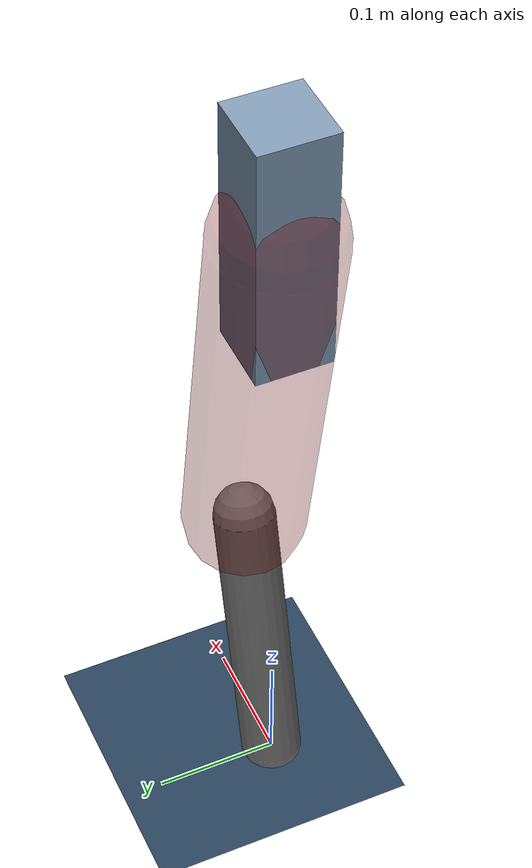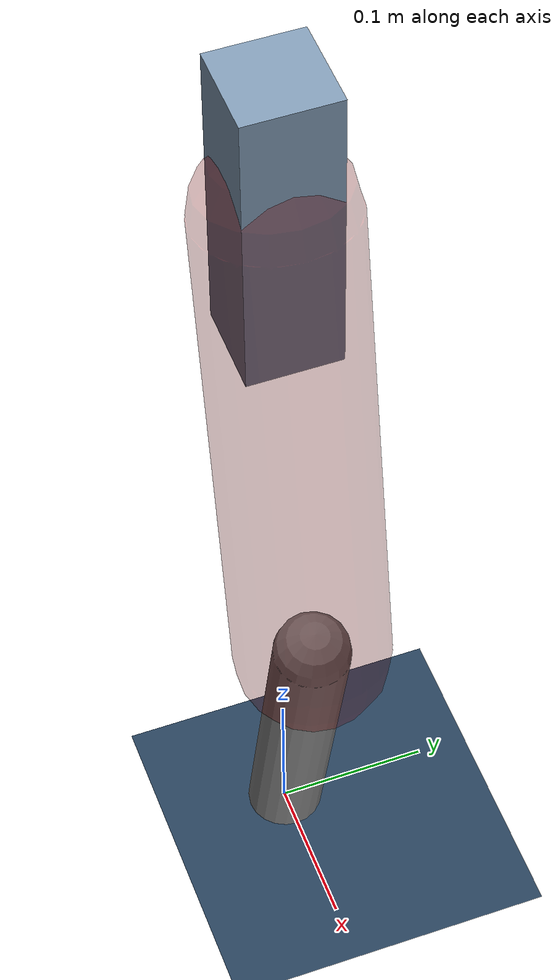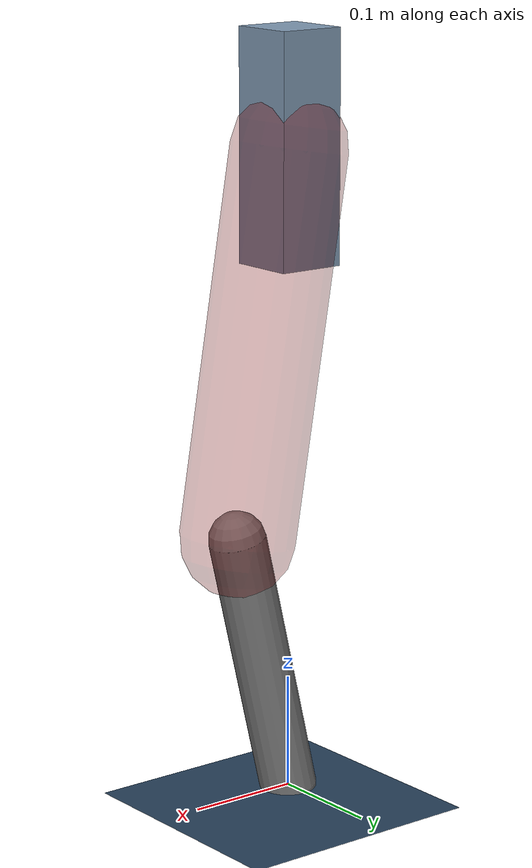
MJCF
<mujoco model="Hopper2D">
	<compiler inertiafromgeom="true" angle="radian" />
	<option timestep="0.001" integrator="implicit" cone="elliptic" solver="Newton" tolerance="1e-10" />

	<default>
		<geom contype="1" conaffinity="1" condim="3" friction="2 0.005 0.0001" solref="0.005 1" />
		<joint limited="true" damping="0.1" />
	</default>

	<asset>
		<texture name="skybox" type="skybox" builtin="gradient" rgb1=".4 .6 .8" rgb2="0 0 0" width="800" height="800" />
		<texture name="grid" type="2d" builtin="checker" rgb1=".1 .2 .3" rgb2=".2 .3 .4" width="300" height="300" mark="edge" markrgb=".2 .3 .4" />
		<material name="ground" texture="grid" texrepeat="1 1" texuniform="true" reflectance="0.1" />
		<material name="leg" rgba="0.5 0.6 0.7 1" />
	</asset>

	<worldbody>

		<geom name="floor" type="plane" size="5 5 0.25" material="ground" />

		<light directional="false" diffuse="0.8 0.8 0.8" specular="0.3 0.3 0.3" pos="0 0 2" dir="0 0 -1" />
		<light mode="targetbodycom" target="base" directional="false" diffuse="0.8 0.8 0.8" specular="0.3 0.3 0.3" pos="0 0 2" dir="0 0 -1" />

		<camera name="fixed" pos="0 -2 1" xyaxes="1 0 0 0 0 1" />
		<camera name="tracking" mode="trackcom" pos="0 -3 1" />

		<body name="root" pos="0 0 0.5676568799551653">
			<joint name="slide_x" type="slide" axis="1 0 0" range="-100 100" />
			<joint name="slide_z" type="slide" axis="0 0 1" range="0 10" />

			<body name="base" pos="0 0 0">
				<geom name="torso" type="box" size="0.03 0.03 0.1" mass="3.524" material="leg" />

				<body name="link1" pos="0 0 0" euler="0 1.4032981001511202 0">
					<joint type="hinge" axis="0 -1 0" pos="0 0 0" name="hinge1" limited="true" range="-3.14 3.14" stiffness="0" damping="0.1" />
					<geom name="thigh" type="capsule" fromto="0 0 0 0.3365499397290058 0 0" size="0.05" rgba="0.5 0 0 0.3" mass="1.0890398312412162" />

					<body name="link2" pos="0.3365499397290058 0 0" euler="0 0.4010864897928002 0">
						<joint type="hinge" axis="0 -1 0" pos="0 0 0" name="hinge2" limited="true" range="-3.14 3.14" stiffness="0" damping="0.1" />
						<geom name="shank" type="capsule" fromto="0 0 0 0.24240005761322916 0 0" size="0.025" mass="0.43622004609058335" />

					</body>
				</body>
			</body>
		</body>
	</worldbody>

	<actuator>
		<motor name="torque1" joint="hinge1" ctrlrange="-102.93089389747715 102.93089389747715" ctrllimited="true" gear="1" />
		<motor name="torque2" joint="hinge2" ctrlrange="-193.52087565612337 193.52087565612337" ctrllimited="true" gear="1" />
	</actuator>
</mujoco>
